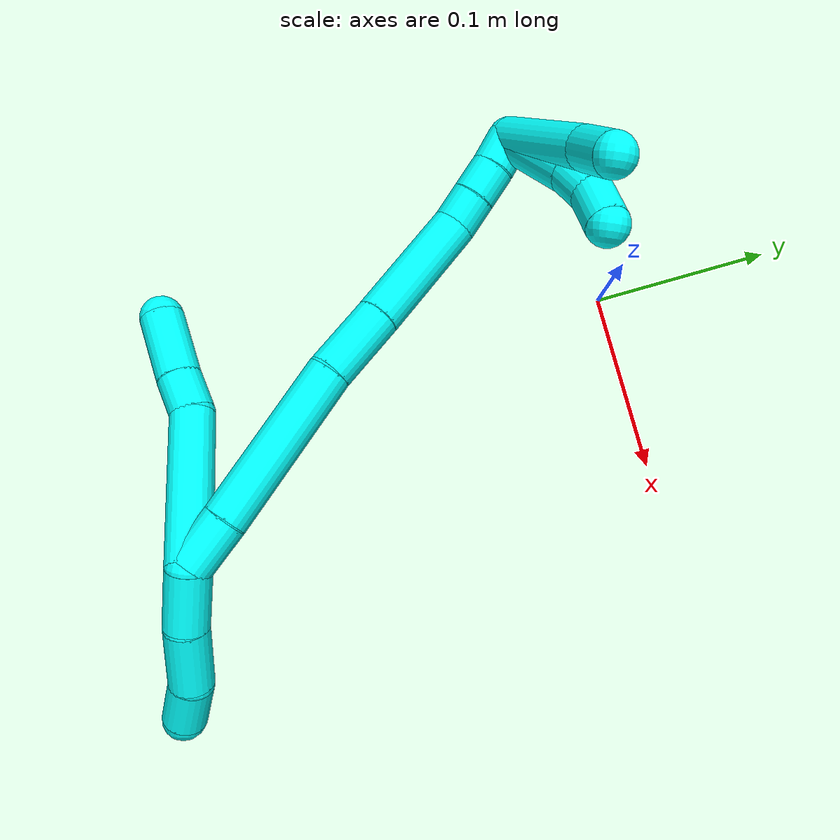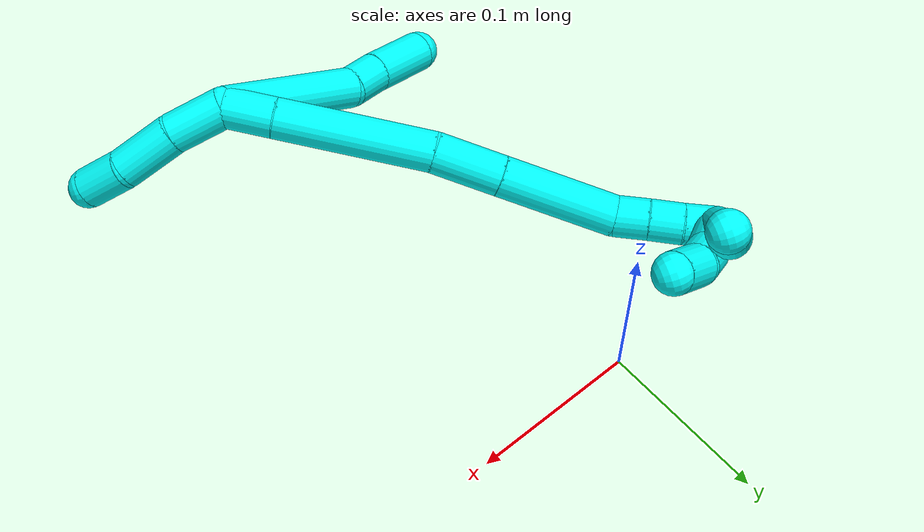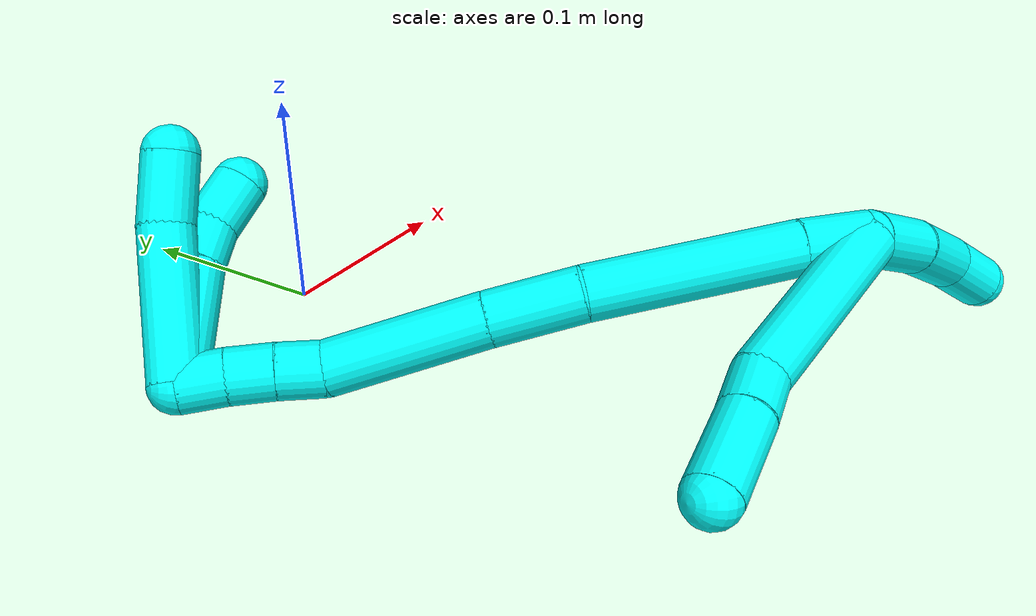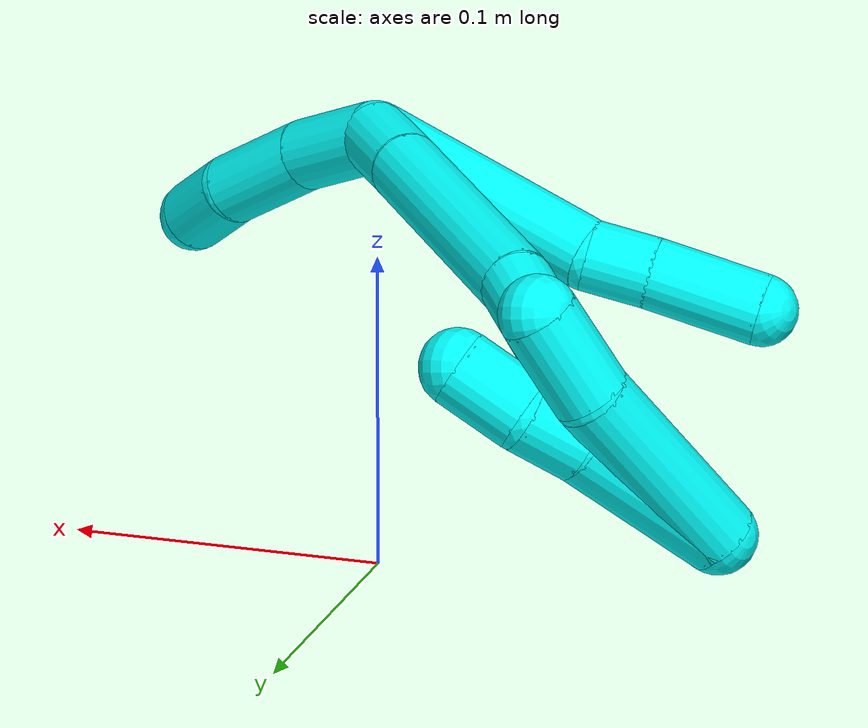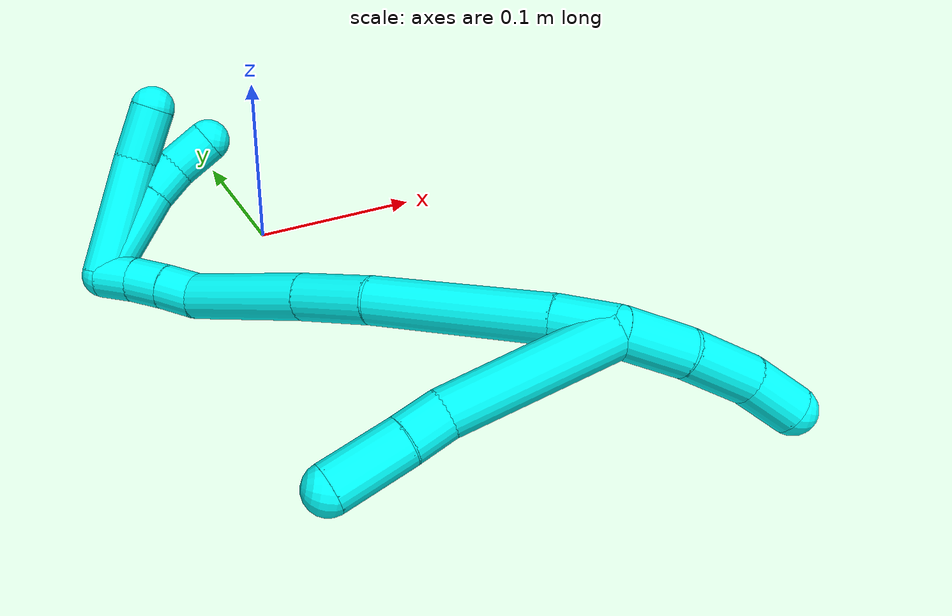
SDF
<sdf version="1.7">
 <world name="default">
  <model name="3">
   <static>0</static>
   <link name="3">
    <collision name="collision-cylinder-e_1_2_8">
     <pose>-0.003397 0.02442 -0.036266 -2.54897 -0.077542 0.252759</pose>
     <geometry><cylinder><radius>0.0125</radius><length>0.087706</length></cylinder></geometry>
     <surface>
      <friction><ode><mu>1.16</mu><mu2>1.16</mu2><slip1>0</slip1><slip2>0</slip2></ode></friction>
      <contact><ode><kp>1e+06</kp><kd>1</kd><max_vel>0</max_vel><min_depth>0.001</min_depth></ode></contact>
     </surface>
    </collision>
    <visual name="visual-cylinder-e_1_2_8">
     <pose>-0.003397 0.02442 -0.036266 -2.54897 -0.077542 0.252759</pose>
     <geometry><cylinder><radius>0.0125</radius><length>0.087706</length></cylinder></geometry>
     <material><ambient>0.003922 1 0.996078 1</ambient></material>
    </visual>
    <collision name="collision-cylinder-e_2_8_9">
     <pose>-0.003912 0.055698 -0.081128 -2.46821 0.256351 -0.705617</pose>
     <geometry><cylinder><radius>0.0125</radius><length>0.022736</length></cylinder></geometry>
     <surface>
      <friction><ode><mu>1.16</mu><mu2>1.16</mu2><slip1>0</slip1><slip2>0</slip2></ode></friction>
      <contact><ode><kp>1e+06</kp><kd>1</kd><max_vel>0</max_vel><min_depth>0.001</min_depth></ode></contact>
     </surface>
    </collision>
    <visual name="visual-cylinder-e_2_8_9">
     <pose>-0.003912 0.055698 -0.081128 -2.46821 0.256351 -0.705617</pose>
     <geometry><cylinder><radius>0.0125</radius><length>0.022736</length></cylinder></geometry>
     <material><ambient>0.003922 1 0.996078 1</ambient></material>
    </visual>
    <collision name="collision-cylinder-e_3_9_6">
     <pose>0.002599 0.074417 -0.10513 -2.48549 0.184497 -0.5308</pose>
     <geometry><cylinder><radius>0.0125</radius><length>0.039558</length></cylinder></geometry>
     <surface>
      <friction><ode><mu>1.16</mu><mu2>1.16</mu2><slip1>0</slip1><slip2>0</slip2></ode></friction>
      <contact><ode><kp>1e+06</kp><kd>1</kd><max_vel>0</max_vel><min_depth>0.001</min_depth></ode></contact>
     </surface>
    </collision>
    <visual name="visual-cylinder-e_3_9_6">
     <pose>0.002599 0.074417 -0.10513 -2.48549 0.184497 -0.5308</pose>
     <geometry><cylinder><radius>0.0125</radius><length>0.039558</length></cylinder></geometry>
     <material><ambient>0.003922 1 0.996078 1</ambient></material>
    </visual>
    <collision name="collision-cylinder-e_1_2_10">
     <pose>-0.001674 0.002671 0.017101 -0.154953 -0.096441 0.007493</pose>
     <geometry><cylinder><radius>0.0125</radius><length>0.034779</length></cylinder></geometry>
     <surface>
      <friction><ode><mu>1.16</mu><mu2>1.16</mu2><slip1>0</slip1><slip2>0</slip2></ode></friction>
      <contact><ode><kp>1e+06</kp><kd>1</kd><max_vel>0</max_vel><min_depth>0.001</min_depth></ode></contact>
     </surface>
    </collision>
    <visual name="visual-cylinder-e_1_2_10">
     <pose>-0.001674 0.002671 0.017101 -0.154953 -0.096441 0.007493</pose>
     <geometry><cylinder><radius>0.0125</radius><length>0.034779</length></cylinder></geometry>
     <material><ambient>0.003922 1 0.996078 1</ambient></material>
    </visual>
    <collision name="collision-cylinder-e_2_10_11">
     <pose>-0.007453 0.009598 0.051905 -0.235896 -0.221695 0.026377</pose>
     <geometry><cylinder><radius>0.0125</radius><length>0.037326</length></cylinder></geometry>
     <surface>
      <friction><ode><mu>1.16</mu><mu2>1.16</mu2><slip1>0</slip1><slip2>0</slip2></ode></friction>
      <contact><ode><kp>1e+06</kp><kd>1</kd><max_vel>0</max_vel><min_depth>0.001</min_depth></ode></contact>
     </surface>
    </collision>
    <visual name="visual-cylinder-e_2_10_11">
     <pose>-0.007453 0.009598 0.051905 -0.235896 -0.221695 0.026377</pose>
     <geometry><cylinder><radius>0.0125</radius><length>0.037326</length></cylinder></geometry>
     <material><ambient>0.003922 1 0.996078 1</ambient></material>
    </visual>
    <collision name="collision-cylinder-e_3_11_5">
     <pose>-0.01232 0.019603 0.082291 -0.425659 -0.054772 0.011839</pose>
     <geometry><cylinder><radius>0.0125</radius><length>0.027895</length></cylinder></geometry>
     <surface>
      <friction><ode><mu>1.16</mu><mu2>1.16</mu2><slip1>0</slip1><slip2>0</slip2></ode></friction>
      <contact><ode><kp>1e+06</kp><kd>1</kd><max_vel>0</max_vel><min_depth>0.001</min_depth></ode></contact>
     </surface>
    </collision>
    <visual name="visual-cylinder-e_3_11_5">
     <pose>-0.01232 0.019603 0.082291 -0.425659 -0.054772 0.011839</pose>
     <geometry><cylinder><radius>0.0125</radius><length>0.027895</length></cylinder></geometry>
     <material><ambient>0.003922 1 0.996078 1</ambient></material>
    </visual>
    <collision name="collision-cylinder-e_1_2_12">
     <pose>-0.00815 -0.000165 -0.012789 3.12869 -0.567354 -3.09733</pose>
     <geometry><cylinder><radius>0.0125</radius><length>0.030332</length></cylinder></geometry>
     <surface>
      <friction><ode><mu>1.16</mu><mu2>1.16</mu2><slip1>0</slip1><slip2>0</slip2></ode></friction>
      <contact><ode><kp>1e+06</kp><kd>1</kd><max_vel>0</max_vel><min_depth>0.001</min_depth></ode></contact>
     </surface>
    </collision>
    <visual name="visual-cylinder-e_1_2_12">
     <pose>-0.00815 -0.000165 -0.012789 3.12869 -0.567354 -3.09733</pose>
     <geometry><cylinder><radius>0.0125</radius><length>0.030332</length></cylinder></geometry>
     <material><ambient>0.003922 1 0.996078 1</ambient></material>
    </visual>
    <collision name="collision-cylinder-e_2_12_13">
     <pose>-0.04156 0.002636 -0.065906 -3.06817 -0.558351 2.88675</pose>
     <geometry><cylinder><radius>0.0125</radius><length>0.095356</length></cylinder></geometry>
     <surface>
      <friction><ode><mu>1.16</mu><mu2>1.16</mu2><slip1>0</slip1><slip2>0</slip2></ode></friction>
      <contact><ode><kp>1e+06</kp><kd>1</kd><max_vel>0</max_vel><min_depth>0.001</min_depth></ode></contact>
     </surface>
    </collision>
    <visual name="visual-cylinder-e_2_12_13">
     <pose>-0.04156 0.002636 -0.065906 -3.06817 -0.558351 2.88675</pose>
     <geometry><cylinder><radius>0.0125</radius><length>0.095356</length></cylinder></geometry>
     <material><ambient>0.003922 1 0.996078 1</ambient></material>
    </visual>
    <collision name="collision-cylinder-e_3_13_14">
     <pose>-0.079898 0.007869 -0.122284 -3.00127 -0.678909 2.74868</pose>
     <geometry><cylinder><radius>0.0125</radius><length>0.041655</length></cylinder></geometry>
     <surface>
      <friction><ode><mu>1.16</mu><mu2>1.16</mu2><slip1>0</slip1><slip2>0</slip2></ode></friction>
      <contact><ode><kp>1e+06</kp><kd>1</kd><max_vel>0</max_vel><min_depth>0.001</min_depth></ode></contact>
     </surface>
    </collision>
    <visual name="visual-cylinder-e_3_13_14">
     <pose>-0.079898 0.007869 -0.122284 -3.00127 -0.678909 2.74868</pose>
     <geometry><cylinder><radius>0.0125</radius><length>0.041655</length></cylinder></geometry>
     <material><ambient>0.003922 1 0.996078 1</ambient></material>
    </visual>
    <collision name="collision-cylinder-e_4_14_15">
     <pose>-0.115336 0.015344 -0.166059 -2.95593 -0.670239 2.61915</pose>
     <geometry><cylinder><radius>0.0125</radius><length>0.071994</length></cylinder></geometry>
     <surface>
      <friction><ode><mu>1.16</mu><mu2>1.16</mu2><slip1>0</slip1><slip2>0</slip2></ode></friction>
      <contact><ode><kp>1e+06</kp><kd>1</kd><max_vel>0</max_vel><min_depth>0.001</min_depth></ode></contact>
     </surface>
    </collision>
    <visual name="visual-cylinder-e_4_14_15">
     <pose>-0.115336 0.015344 -0.166059 -2.95593 -0.670239 2.61915</pose>
     <geometry><cylinder><radius>0.0125</radius><length>0.071994</length></cylinder></geometry>
     <material><ambient>0.003922 1 0.996078 1</ambient></material>
    </visual>
    <collision name="collision-cylinder-e_5_15_16">
     <pose>-0.142276 0.01955 -0.202851 3.03163 -0.465216 -2.68506</pose>
     <geometry><cylinder><radius>0.0125</radius><length>0.020413</length></cylinder></geometry>
     <surface>
      <friction><ode><mu>1.16</mu><mu2>1.16</mu2><slip1>0</slip1><slip2>0</slip2></ode></friction>
      <contact><ode><kp>1e+06</kp><kd>1</kd><max_vel>0</max_vel><min_depth>0.001</min_depth></ode></contact>
     </surface>
    </collision>
    <visual name="visual-cylinder-e_5_15_16">
     <pose>-0.142276 0.01955 -0.202851 3.03163 -0.465216 -2.68506</pose>
     <geometry><cylinder><radius>0.0125</radius><length>0.020413</length></cylinder></geometry>
     <material><ambient>0.003922 1 0.996078 1</ambient></material>
    </visual>
    <collision name="collision-cylinder-e_6_16_17">
     <pose>-0.151551 0.018106 -0.220776 3.09158 -0.486991 -2.94089</pose>
     <geometry><cylinder><radius>0.0125</radius><length>0.020074</length></cylinder></geometry>
     <surface>
      <friction><ode><mu>1.16</mu><mu2>1.16</mu2><slip1>0</slip1><slip2>0</slip2></ode></friction>
      <contact><ode><kp>1e+06</kp><kd>1</kd><max_vel>0</max_vel><min_depth>0.001</min_depth></ode></contact>
     </surface>
    </collision>
    <visual name="visual-cylinder-e_6_16_17">
     <pose>-0.151551 0.018106 -0.220776 3.09158 -0.486991 -2.94089</pose>
     <geometry><cylinder><radius>0.0125</radius><length>0.020074</length></cylinder></geometry>
     <material><ambient>0.003922 1 0.996078 1</ambient></material>
    </visual>
    <collision name="collision-cylinder-e_7_17_1">
     <pose>-0.160559 0.017918 -0.238752 -3.11358 -0.441554 3.01692</pose>
     <geometry><cylinder><radius>0.0125</radius><length>0.020176</length></cylinder></geometry>
     <surface>
      <friction><ode><mu>1.16</mu><mu2>1.16</mu2><slip1>0</slip1><slip2>0</slip2></ode></friction>
      <contact><ode><kp>1e+06</kp><kd>1</kd><max_vel>0</max_vel><min_depth>0.001</min_depth></ode></contact>
     </surface>
    </collision>
    <visual name="visual-cylinder-e_7_17_1">
     <pose>-0.160559 0.017918 -0.238752 -3.11358 -0.441554 3.01692</pose>
     <geometry><cylinder><radius>0.0125</radius><length>0.020176</length></cylinder></geometry>
     <material><ambient>0.003922 1 0.996078 1</ambient></material>
    </visual>
    <collision name="collision-cylinder-e_1_1_18">
     <pose>-0.168908 -0.015594 -0.244535 1.47237 -0.118439 -0.107342</pose>
     <geometry><cylinder><radius>0.0125</radius><length>0.068341</length></cylinder></geometry>
     <surface>
      <friction><ode><mu>1.16</mu><mu2>1.16</mu2><slip1>0</slip1><slip2>0</slip2></ode></friction>
      <contact><ode><kp>1e+06</kp><kd>1</kd><max_vel>0</max_vel><min_depth>0.001</min_depth></ode></contact>
     </surface>
    </collision>
    <visual name="visual-cylinder-e_1_1_18">
     <pose>-0.168908 -0.015594 -0.244535 1.47237 -0.118439 -0.107342</pose>
     <geometry><cylinder><radius>0.0125</radius><length>0.068341</length></cylinder></geometry>
     <material><ambient>0.003922 1 0.996078 1</ambient></material>
    </visual>
    <collision name="collision-cylinder-e_2_18_4">
     <pose>-0.171386 -0.06491 -0.238681 1.41018 0.098694 0.08401</pose>
     <geometry><cylinder><radius>0.0125</radius><length>0.031659</length></cylinder></geometry>
     <surface>
      <friction><ode><mu>1.16</mu><mu2>1.16</mu2><slip1>0</slip1><slip2>0</slip2></ode></friction>
      <contact><ode><kp>1e+06</kp><kd>1</kd><max_vel>0</max_vel><min_depth>0.001</min_depth></ode></contact>
     </surface>
    </collision>
    <visual name="visual-cylinder-e_2_18_4">
     <pose>-0.171386 -0.06491 -0.238681 1.41018 0.098694 0.08401</pose>
     <geometry><cylinder><radius>0.0125</radius><length>0.031659</length></cylinder></geometry>
     <material><ambient>0.003922 1 0.996078 1</ambient></material>
    </visual>
    <collision name="collision-cylinder-e_1_1_19">
     <pose>-0.170796 -0.006804 -0.238623 1.21627 -0.218932 -0.152722</pose>
     <geometry><cylinder><radius>0.0125</radius><length>0.05457</length></cylinder></geometry>
     <surface>
      <friction><ode><mu>1.16</mu><mu2>1.16</mu2><slip1>0</slip1><slip2>0</slip2></ode></friction>
      <contact><ode><kp>1e+06</kp><kd>1</kd><max_vel>0</max_vel><min_depth>0.001</min_depth></ode></contact>
     </surface>
    </collision>
    <visual name="visual-cylinder-e_1_1_19">
     <pose>-0.170796 -0.006804 -0.238623 1.21627 -0.218932 -0.152722</pose>
     <geometry><cylinder><radius>0.0125</radius><length>0.05457</length></cylinder></geometry>
     <material><ambient>0.003922 1 0.996078 1</ambient></material>
    </visual>
    <collision name="collision-cylinder-e_2_19_20">
     <pose>-0.178982 -0.040432 -0.224253 1.03605 -0.221056 -0.126336</pose>
     <geometry><cylinder><radius>0.0125</radius><length>0.02061</length></cylinder></geometry>
     <surface>
      <friction><ode><mu>1.16</mu><mu2>1.16</mu2><slip1>0</slip1><slip2>0</slip2></ode></friction>
      <contact><ode><kp>1e+06</kp><kd>1</kd><max_vel>0</max_vel><min_depth>0.001</min_depth></ode></contact>
     </surface>
    </collision>
    <visual name="visual-cylinder-e_2_19_20">
     <pose>-0.178982 -0.040432 -0.224253 1.03605 -0.221056 -0.126336</pose>
     <geometry><cylinder><radius>0.0125</radius><length>0.02061</length></cylinder></geometry>
     <material><ambient>0.003922 1 0.996078 1</ambient></material>
    </visual>
    <collision name="collision-cylinder-e_3_20_3">
     <pose>-0.181083 -0.058519 -0.211071 0.86402 0.012754 0.005881</pose>
     <geometry><cylinder><radius>0.0125</radius><length>0.02482</length></cylinder></geometry>
     <surface>
      <friction><ode><mu>1.16</mu><mu2>1.16</mu2><slip1>0</slip1><slip2>0</slip2></ode></friction>
      <contact><ode><kp>1e+06</kp><kd>1</kd><max_vel>0</max_vel><min_depth>0.001</min_depth></ode></contact>
     </surface>
    </collision>
    <visual name="visual-cylinder-e_3_20_3">
     <pose>-0.181083 -0.058519 -0.211071 0.86402 0.012754 0.005881</pose>
     <geometry><cylinder><radius>0.0125</radius><length>0.02482</length></cylinder></geometry>
     <material><ambient>0.003922 1 0.996078 1</ambient></material>
    </visual>
    <collision name="collision-sphere-3">
     <pose>-0.180925 -0.067956 -0.203013 0 -0 0</pose>
     <geometry><sphere><radius>0.0125</radius></sphere></geometry>
     <surface>
      <friction><ode><mu>1.16</mu><mu2>1.16</mu2><slip1>0</slip1><slip2>0</slip2></ode></friction>
      <contact><ode><kp>1e+06</kp><kd>1</kd><max_vel>0</max_vel><min_depth>0.001</min_depth></ode></contact>
     </surface>
    </collision>
    <visual name="visual-sphere-3">
     <pose>-0.180925 -0.067956 -0.203013 0 -0 0</pose>
     <geometry><sphere><radius>0.0125</radius></sphere></geometry>
     <material><ambient>0.003922 1 0.996078 1</ambient></material>
    </visual>
    <collision name="collision-sphere-20">
     <pose>-0.181241 -0.049083 -0.219129 0 -0 0</pose>
     <geometry><sphere><radius>0.0125</radius></sphere></geometry>
     <surface>
      <friction><ode><mu>1.16</mu><mu2>1.16</mu2><slip1>0</slip1><slip2>0</slip2></ode></friction>
      <contact><ode><kp>1e+06</kp><kd>1</kd><max_vel>0</max_vel><min_depth>0.001</min_depth></ode></contact>
     </surface>
    </collision>
    <visual name="visual-sphere-20">
     <pose>-0.181241 -0.049083 -0.219129 0 -0 0</pose>
     <geometry><sphere><radius>0.0125</radius></sphere></geometry>
     <material><ambient>0.003922 1 0.996078 1</ambient></material>
    </visual>
    <collision name="collision-sphere-19">
     <pose>-0.176722 -0.031781 -0.229377 0 -0 0</pose>
     <geometry><sphere><radius>0.0125</radius></sphere></geometry>
     <surface>
      <friction><ode><mu>1.16</mu><mu2>1.16</mu2><slip1>0</slip1><slip2>0</slip2></ode></friction>
      <contact><ode><kp>1e+06</kp><kd>1</kd><max_vel>0</max_vel><min_depth>0.001</min_depth></ode></contact>
     </surface>
    </collision>
    <visual name="visual-sphere-19">
     <pose>-0.176722 -0.031781 -0.229377 0 -0 0</pose>
     <geometry><sphere><radius>0.0125</radius></sphere></geometry>
     <material><ambient>0.003922 1 0.996078 1</ambient></material>
    </visual>
    <collision name="collision-sphere-11">
     <pose>-0.011556 0.013853 0.069607 0 -0 0</pose>
     <geometry><sphere><radius>0.0125</radius></sphere></geometry>
     <surface>
      <friction><ode><mu>1.16</mu><mu2>1.16</mu2><slip1>0</slip1><slip2>0</slip2></ode></friction>
      <contact><ode><kp>1e+06</kp><kd>1</kd><max_vel>0</max_vel><min_depth>0.001</min_depth></ode></contact>
     </surface>
    </collision>
    <visual name="visual-sphere-11">
     <pose>-0.011556 0.013853 0.069607 0 -0 0</pose>
     <geometry><sphere><radius>0.0125</radius></sphere></geometry>
     <material><ambient>0.003922 1 0.996078 1</ambient></material>
    </visual>
    <collision name="collision-sphere-10">
     <pose>-0.003349 0.005343 0.034203 0 -0 0</pose>
     <geometry><sphere><radius>0.0125</radius></sphere></geometry>
     <surface>
      <friction><ode><mu>1.16</mu><mu2>1.16</mu2><slip1>0</slip1><slip2>0</slip2></ode></friction>
      <contact><ode><kp>1e+06</kp><kd>1</kd><max_vel>0</max_vel><min_depth>0.001</min_depth></ode></contact>
     </surface>
    </collision>
    <visual name="visual-sphere-10">
     <pose>-0.003349 0.005343 0.034203 0 -0 0</pose>
     <geometry><sphere><radius>0.0125</radius></sphere></geometry>
     <material><ambient>0.003922 1 0.996078 1</ambient></material>
    </visual>
    <collision name="collision-sphere-6">
     <pose>0.006228 0.086278 -0.120537 0 -0 0</pose>
     <geometry><sphere><radius>0.0125</radius></sphere></geometry>
     <surface>
      <friction><ode><mu>1.16</mu><mu2>1.16</mu2><slip1>0</slip1><slip2>0</slip2></ode></friction>
      <contact><ode><kp>1e+06</kp><kd>1</kd><max_vel>0</max_vel><min_depth>0.001</min_depth></ode></contact>
     </surface>
    </collision>
    <visual name="visual-sphere-6">
     <pose>0.006228 0.086278 -0.120537 0 -0 0</pose>
     <geometry><sphere><radius>0.0125</radius></sphere></geometry>
     <material><ambient>0.003922 1 0.996078 1</ambient></material>
    </visual>
    <collision name="collision-sphere-9">
     <pose>-0.001029 0.062556 -0.089724 0 -0 0</pose>
     <geometry><sphere><radius>0.0125</radius></sphere></geometry>
     <surface>
      <friction><ode><mu>1.16</mu><mu2>1.16</mu2><slip1>0</slip1><slip2>0</slip2></ode></friction>
      <contact><ode><kp>1e+06</kp><kd>1</kd><max_vel>0</max_vel><min_depth>0.001</min_depth></ode></contact>
     </surface>
    </collision>
    <visual name="visual-sphere-9">
     <pose>-0.001029 0.062556 -0.089724 0 -0 0</pose>
     <geometry><sphere><radius>0.0125</radius></sphere></geometry>
     <material><ambient>0.003922 1 0.996078 1</ambient></material>
    </visual>
    <collision name="collision-sphere-2">
     <geometry><sphere><radius>0.0125</radius></sphere></geometry>
     <surface>
      <friction><ode><mu>1.16</mu><mu2>1.16</mu2><slip1>0</slip1><slip2>0</slip2></ode></friction>
      <contact><ode><kp>1e+06</kp><kd>1</kd><max_vel>0</max_vel><min_depth>0.001</min_depth></ode></contact>
     </surface>
    </collision>
    <visual name="visual-sphere-2">
     <geometry><sphere><radius>0.0125</radius></sphere></geometry>
     <material><ambient>0.003922 1 0.996078 1</ambient></material>
    </visual>
    <collision name="collision-sphere-8">
     <pose>-0.006794 0.04884 -0.072532 0 -0 0</pose>
     <geometry><sphere><radius>0.0125</radius></sphere></geometry>
     <surface>
      <friction><ode><mu>1.16</mu><mu2>1.16</mu2><slip1>0</slip1><slip2>0</slip2></ode></friction>
      <contact><ode><kp>1e+06</kp><kd>1</kd><max_vel>0</max_vel><min_depth>0.001</min_depth></ode></contact>
     </surface>
    </collision>
    <visual name="visual-sphere-8">
     <pose>-0.006794 0.04884 -0.072532 0 -0 0</pose>
     <geometry><sphere><radius>0.0125</radius></sphere></geometry>
     <material><ambient>0.003922 1 0.996078 1</ambient></material>
    </visual>
    <collision name="collision-sphere-5">
     <pose>-0.013083 0.025354 0.094974 0 -0 0</pose>
     <geometry><sphere><radius>0.0125</radius></sphere></geometry>
     <surface>
      <friction><ode><mu>1.16</mu><mu2>1.16</mu2><slip1>0</slip1><slip2>0</slip2></ode></friction>
      <contact><ode><kp>1e+06</kp><kd>1</kd><max_vel>0</max_vel><min_depth>0.001</min_depth></ode></contact>
     </surface>
    </collision>
    <visual name="visual-sphere-5">
     <pose>-0.013083 0.025354 0.094974 0 -0 0</pose>
     <geometry><sphere><radius>0.0125</radius></sphere></geometry>
     <material><ambient>0.003922 1 0.996078 1</ambient></material>
    </visual>
    <collision name="collision-sphere-12">
     <pose>-0.016301 -0.00033 -0.025578 0 -0 0</pose>
     <geometry><sphere><radius>0.0125</radius></sphere></geometry>
     <surface>
      <friction><ode><mu>1.16</mu><mu2>1.16</mu2><slip1>0</slip1><slip2>0</slip2></ode></friction>
      <contact><ode><kp>1e+06</kp><kd>1</kd><max_vel>0</max_vel><min_depth>0.001</min_depth></ode></contact>
     </surface>
    </collision>
    <visual name="visual-sphere-12">
     <pose>-0.016301 -0.00033 -0.025578 0 -0 0</pose>
     <geometry><sphere><radius>0.0125</radius></sphere></geometry>
     <material><ambient>0.003922 1 0.996078 1</ambient></material>
    </visual>
    <collision name="collision-sphere-13">
     <pose>-0.066819 0.005602 -0.106234 0 -0 0</pose>
     <geometry><sphere><radius>0.0125</radius></sphere></geometry>
     <surface>
      <friction><ode><mu>1.16</mu><mu2>1.16</mu2><slip1>0</slip1><slip2>0</slip2></ode></friction>
      <contact><ode><kp>1e+06</kp><kd>1</kd><max_vel>0</max_vel><min_depth>0.001</min_depth></ode></contact>
     </surface>
    </collision>
    <visual name="visual-sphere-13">
     <pose>-0.066819 0.005602 -0.106234 0 -0 0</pose>
     <geometry><sphere><radius>0.0125</radius></sphere></geometry>
     <material><ambient>0.003922 1 0.996078 1</ambient></material>
    </visual>
    <collision name="collision-sphere-14">
     <pose>-0.092976 0.010136 -0.138334 0 -0 0</pose>
     <geometry><sphere><radius>0.0125</radius></sphere></geometry>
     <surface>
      <friction><ode><mu>1.16</mu><mu2>1.16</mu2><slip1>0</slip1><slip2>0</slip2></ode></friction>
      <contact><ode><kp>1e+06</kp><kd>1</kd><max_vel>0</max_vel><min_depth>0.001</min_depth></ode></contact>
     </surface>
    </collision>
    <visual name="visual-sphere-14">
     <pose>-0.092976 0.010136 -0.138334 0 -0 0</pose>
     <geometry><sphere><radius>0.0125</radius></sphere></geometry>
     <material><ambient>0.003922 1 0.996078 1</ambient></material>
    </visual>
    <collision name="collision-sphere-15">
     <pose>-0.137697 0.020551 -0.193784 0 -0 0</pose>
     <geometry><sphere><radius>0.0125</radius></sphere></geometry>
     <surface>
      <friction><ode><mu>1.16</mu><mu2>1.16</mu2><slip1>0</slip1><slip2>0</slip2></ode></friction>
      <contact><ode><kp>1e+06</kp><kd>1</kd><max_vel>0</max_vel><min_depth>0.001</min_depth></ode></contact>
     </surface>
    </collision>
    <visual name="visual-sphere-15">
     <pose>-0.137697 0.020551 -0.193784 0 -0 0</pose>
     <geometry><sphere><radius>0.0125</radius></sphere></geometry>
     <material><ambient>0.003922 1 0.996078 1</ambient></material>
    </visual>
    <collision name="collision-sphere-16">
     <pose>-0.146854 0.018549 -0.211917 0 -0 0</pose>
     <geometry><sphere><radius>0.0125</radius></sphere></geometry>
     <surface>
      <friction><ode><mu>1.16</mu><mu2>1.16</mu2><slip1>0</slip1><slip2>0</slip2></ode></friction>
      <contact><ode><kp>1e+06</kp><kd>1</kd><max_vel>0</max_vel><min_depth>0.001</min_depth></ode></contact>
     </surface>
    </collision>
    <visual name="visual-sphere-16">
     <pose>-0.146854 0.018549 -0.211917 0 -0 0</pose>
     <geometry><sphere><radius>0.0125</radius></sphere></geometry>
     <material><ambient>0.003922 1 0.996078 1</ambient></material>
    </visual>
    <collision name="collision-sphere-17">
     <pose>-0.156248 0.017662 -0.229635 0 -0 0</pose>
     <geometry><sphere><radius>0.0125</radius></sphere></geometry>
     <surface>
      <friction><ode><mu>1.16</mu><mu2>1.16</mu2><slip1>0</slip1><slip2>0</slip2></ode></friction>
      <contact><ode><kp>1e+06</kp><kd>1</kd><max_vel>0</max_vel><min_depth>0.001</min_depth></ode></contact>
     </surface>
    </collision>
    <visual name="visual-sphere-17">
     <pose>-0.156248 0.017662 -0.229635 0 -0 0</pose>
     <geometry><sphere><radius>0.0125</radius></sphere></geometry>
     <material><ambient>0.003922 1 0.996078 1</ambient></material>
    </visual>
    <collision name="collision-sphere-1">
     <pose>-0.16487 0.018173 -0.247869 0 -0 0</pose>
     <geometry><sphere><radius>0.0125</radius></sphere></geometry>
     <surface>
      <friction><ode><mu>1.16</mu><mu2>1.16</mu2><slip1>0</slip1><slip2>0</slip2></ode></friction>
      <contact><ode><kp>1e+06</kp><kd>1</kd><max_vel>0</max_vel><min_depth>0.001</min_depth></ode></contact>
     </surface>
    </collision>
    <visual name="visual-sphere-1">
     <pose>-0.16487 0.018173 -0.247869 0 -0 0</pose>
     <geometry><sphere><radius>0.0125</radius></sphere></geometry>
     <material><ambient>0.003922 1 0.996078 1</ambient></material>
    </visual>
    <collision name="collision-sphere-18">
     <pose>-0.172946 -0.049361 -0.2412 0 -0 0</pose>
     <geometry><sphere><radius>0.0125</radius></sphere></geometry>
     <surface>
      <friction><ode><mu>1.16</mu><mu2>1.16</mu2><slip1>0</slip1><slip2>0</slip2></ode></friction>
      <contact><ode><kp>1e+06</kp><kd>1</kd><max_vel>0</max_vel><min_depth>0.001</min_depth></ode></contact>
     </surface>
    </collision>
    <visual name="visual-sphere-18">
     <pose>-0.172946 -0.049361 -0.2412 0 -0 0</pose>
     <geometry><sphere><radius>0.0125</radius></sphere></geometry>
     <material><ambient>0.003922 1 0.996078 1</ambient></material>
    </visual>
    <collision name="collision-sphere-4">
     <pose>-0.169826 -0.08046 -0.236162 0 -0 0</pose>
     <geometry><sphere><radius>0.0125</radius></sphere></geometry>
     <surface>
      <friction><ode><mu>1.16</mu><mu2>1.16</mu2><slip1>0</slip1><slip2>0</slip2></ode></friction>
      <contact><ode><kp>1e+06</kp><kd>1</kd><max_vel>0</max_vel><min_depth>0.001</min_depth></ode></contact>
     </surface>
    </collision>
    <visual name="visual-sphere-4">
     <pose>-0.169826 -0.08046 -0.236162 0 -0 0</pose>
     <geometry><sphere><radius>0.0125</radius></sphere></geometry>
     <material><ambient>0.003922 1 0.996078 1</ambient></material>
    </visual>
    <inertial>
     <pose>-0.08062 0.005833 -0.118157 0 -0 0</pose>
     <mass>0.75</mass>
     <inertia><ixx>5.3e-05</ixx><ixy>0</ixy><ixz>0</ixz><iyy>0.000125</iyy><iyz>0</iyz><izz>6.3e-05</izz></inertia>
    </inertial>
   </link>
   <pose>0.084059 -0.25238 0.058399 -1.80348 -0.509878 -1.86799</pose>
  </model>
 </world>
</sdf>
